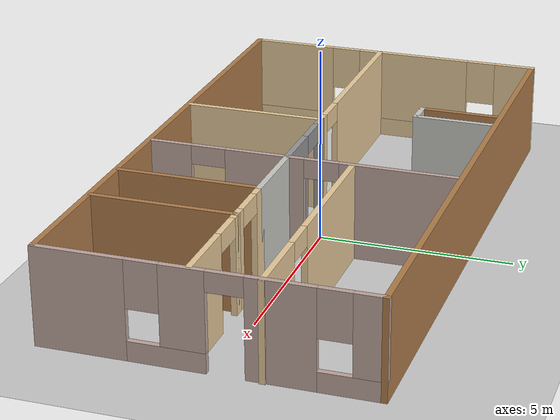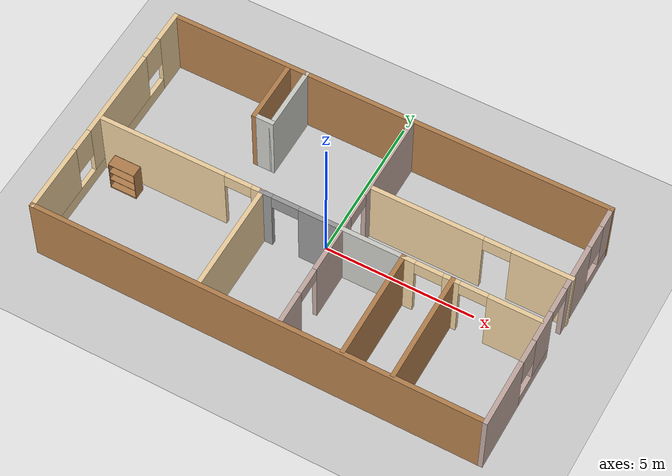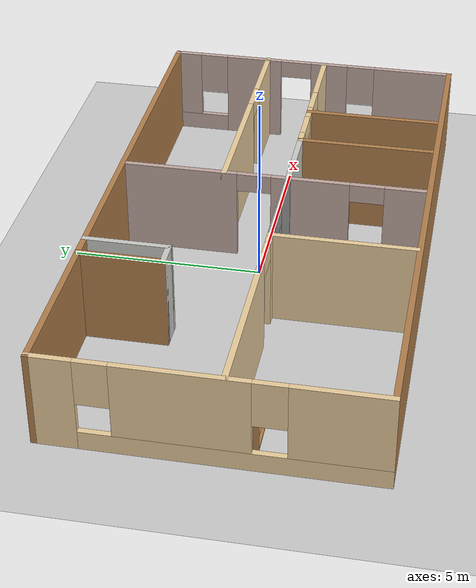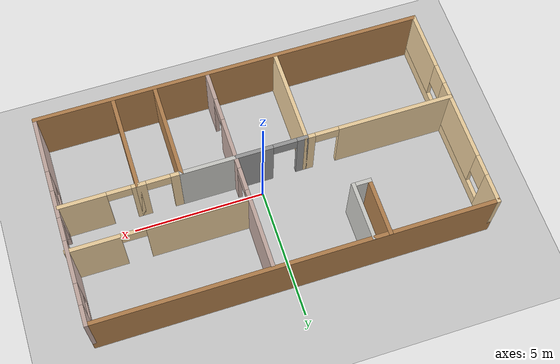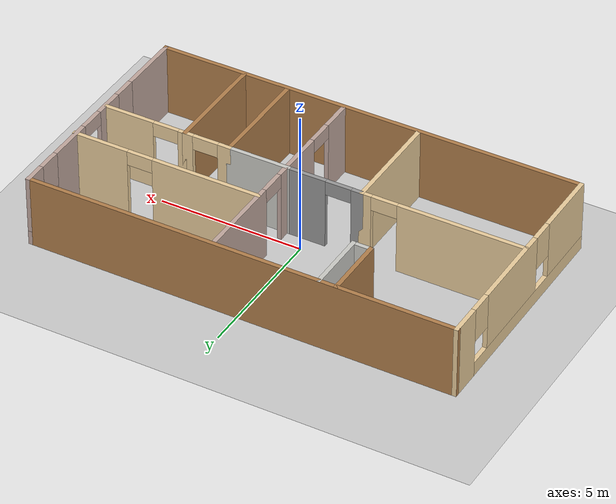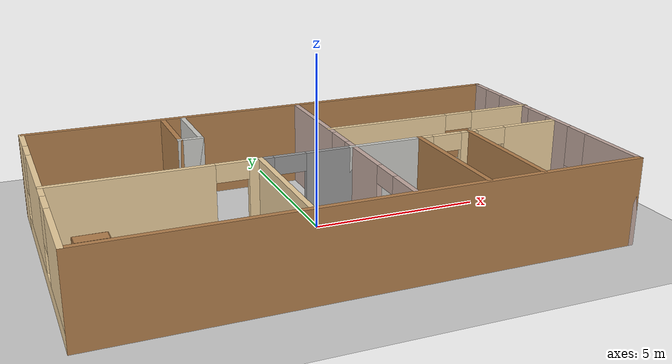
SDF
<sdf version="1.6">
 <world name="default">
  <light name="sun" type="directional">
   <pose>0 0 10 0 -0 0</pose>
   <diffuse>0.8 0.8 0.8 1</diffuse>
   <specular>0.2 0.2 0.2 1</specular>
   <attenuation>
    <range>1000</range>
    <constant>0.9</constant>
    <linear>0.01</linear>
    <quadratic>0.001</quadratic>
   </attenuation>
   <direction>-0.5 0.1 -0.9</direction>
  </light>
  <model name="ground_plane">
   <static>1</static>
   <link name="link">
    <collision name="collision">
     <geometry><plane><normal>0 0 1</normal><size>100 100</size></plane></geometry>
     <surface>
      <contact><collide_bitmask>65535</collide_bitmask></contact>
      <friction><ode><mu>100</mu><mu2>50</mu2></ode></friction>
     </surface>
    </collision>
    <visual name="visual">
     <cast_shadows>0</cast_shadows>
     <geometry><plane><normal>0 0 1</normal><size>100 100</size></plane></geometry>
     <material>
      <script><uri>file://media/materials/scripts/gazebo.material</uri><name>Gazebo/Grey</name></script>
     </material>
    </visual>
   </link>
  </model>
  <gravity>0 0 -9.8</gravity>
  <magnetic_field>6e-06 2.3e-05 -4.2e-05</magnetic_field>
  <atmosphere type="adiabatic"/>
  <physics name="default_physics" default="0" type="ode">
   <max_step_size>0.001</max_step_size>
   <real_time_factor>1</real_time_factor>
   <real_time_update_rate>1000</real_time_update_rate>
  </physics>
  <scene><ambient>0.4 0.4 0.4 1</ambient><background>0.7 0.7 0.7 1</background><shadows>1</shadows></scene>
  <spherical_coordinates>
   <surface_model>EARTH_WGS84</surface_model>
   <latitude_deg>0</latitude_deg>
   <longitude_deg>0</longitude_deg>
   <elevation>0</elevation>
   <heading_deg>0</heading_deg>
  </spherical_coordinates>
  <model name="Building">
   <pose>0 -0.223279 0 0 -0 0</pose>
   <link name="Wall_10">
    <pose>-4.62797 -0.372796 0 0 -0 0</pose>
    <visual name="Wall_10_Visual_0">
     <pose>-0.658179 0 1.25 0 -0 0</pose>
     <geometry><box><size>4.43364 0.15 2.5</size></box></geometry>
     <material>
      <script><uri>file://media/materials/scripts/gazebo.material</uri><name>Gazebo/Grey</name></script>
      <ambient>0.921569 0.807843 0.615686 1</ambient>
     </material>
     <meta><layer>0</layer></meta>
    </visual>
    <collision name="Wall_10_Collision_0">
     <geometry><box><size>4.43364 0.15 2.5</size></box></geometry>
     <pose>-0.658179 0 1.25 0 -0 0</pose>
    </collision>
    <visual name="Wall_10_Visual_1">
     <pose>2.66682 0 1.25 0 -0 0</pose>
     <geometry><box><size>0.416358 0.15 2.5</size></box></geometry>
     <material>
      <script><uri>file://media/materials/scripts/gazebo.material</uri><name>Gazebo/Grey</name></script>
      <ambient>0.921569 0.807843 0.615686 1</ambient>
     </material>
     <meta><layer>0</layer></meta>
    </visual>
    <collision name="Wall_10_Collision_1">
     <geometry><box><size>0.416358 0.15 2.5</size></box></geometry>
     <pose>2.66682 0 1.25 0 -0 0</pose>
    </collision>
    <visual name="Wall_10_Visual_2">
     <pose>2.00864 0 2.25 0 -0 0</pose>
     <geometry><box><size>0.9 0.15 0.5</size></box></geometry>
     <material>
      <script><uri>file://media/materials/scripts/gazebo.material</uri><name>Gazebo/Grey</name></script>
      <ambient>0.921569 0.807843 0.615686 1</ambient>
     </material>
     <meta><layer>0</layer></meta>
    </visual>
    <collision name="Wall_10_Collision_2">
     <geometry><box><size>0.9 0.15 0.5</size></box></geometry>
     <pose>2.00864 0 2.25 0 -0 0</pose>
    </collision>
   </link>
   <link name="Wall_11">
    <collision name="Wall_11_Collision">
     <geometry><box><size>3.75 0.15 2.5</size></box></geometry>
     <pose>0 0 1.25 0 -0 0</pose>
    </collision>
    <visual name="Wall_11_Visual">
     <pose>0 0 1.25 0 -0 0</pose>
     <geometry><box><size>3.75 0.15 2.5</size></box></geometry>
     <material>
      <script><uri>file://media/materials/scripts/gazebo.material</uri><name>Gazebo/Grey</name></script>
      <ambient>0.921569 0.807843 0.615686 1</ambient>
     </material>
     <meta><layer>0</layer></meta>
    </visual>
    <pose>-1.82797 -2.1728 0 0 0 -1.5708</pose>
   </link>
   <link name="Wall_13">
    <collision name="Wall_13_Collision">
     <geometry><box><size>15 0.15 2.5</size></box></geometry>
     <pose>0 0 1.25 0 -0 0</pose>
    </collision>
    <visual name="Wall_13_Visual">
     <pose>0 0 1.25 0 -0 0</pose>
     <geometry><box><size>15 0.15 2.5</size></box></geometry>
     <material>
      <script><uri>file://media/materials/scripts/gazebo.material</uri><name>Gazebo/Wood</name></script>
      <ambient>1 1 1 1</ambient>
     </material>
     <meta><layer>0</layer></meta>
    </visual>
    <pose>-0.019546 4.05 0 0 -0 0</pose>
   </link>
   <link name="Wall_17">
    <pose>0.844548 -0.003816 0 0 0 -1.5708</pose>
    <visual name="Wall_17_Visual_0">
     <pose>-2.48974 0 1.25 0 -0 0</pose>
     <geometry><box><size>3.02052 0.15 2.5</size></box></geometry>
     <material>
      <script><uri>file://media/materials/scripts/gazebo.material</uri><name>Gazebo/Grey</name></script>
      <ambient>0.760784 0.662745 0.627451 1</ambient>
     </material>
     <meta><layer>0</layer></meta>
    </visual>
    <collision name="Wall_17_Collision_0">
     <geometry><box><size>3.02052 0.15 2.5</size></box></geometry>
     <pose>-2.48974 0 1.25 0 -0 0</pose>
    </collision>
    <visual name="Wall_17_Visual_1">
     <pose>0.954141 0 1.25 0 -0 0</pose>
     <geometry><box><size>2.06725 0.15 2.5</size></box></geometry>
     <material>
      <script><uri>file://media/materials/scripts/gazebo.material</uri><name>Gazebo/Grey</name></script>
      <ambient>0.760784 0.662745 0.627451 1</ambient>
     </material>
     <meta><layer>0</layer></meta>
    </visual>
    <collision name="Wall_17_Collision_1">
     <geometry><box><size>2.06725 0.15 2.5</size></box></geometry>
     <pose>0.954141 0 1.25 0 -0 0</pose>
    </collision>
    <visual name="Wall_17_Visual_2">
     <pose>3.44388 0 1.25 0 -0 0</pose>
     <geometry><box><size>1.11223 0.15 2.5</size></box></geometry>
     <material>
      <script><uri>file://media/materials/scripts/gazebo.material</uri><name>Gazebo/Grey</name></script>
      <ambient>0.760784 0.662745 0.627451 1</ambient>
     </material>
     <meta><layer>0</layer></meta>
    </visual>
    <collision name="Wall_17_Collision_2">
     <geometry><box><size>1.11223 0.15 2.5</size></box></geometry>
     <pose>3.44388 0 1.25 0 -0 0</pose>
    </collision>
    <visual name="Wall_17_Visual_3">
     <pose>-0.529485 0 2.25 0 -0 0</pose>
     <geometry><box><size>0.9 0.15 0.5</size></box></geometry>
     <material>
      <script><uri>file://media/materials/scripts/gazebo.material</uri><name>Gazebo/Grey</name></script>
      <ambient>0.760784 0.662745 0.627451 1</ambient>
     </material>
     <meta><layer>0</layer></meta>
    </visual>
    <collision name="Wall_17_Collision_3">
     <geometry><box><size>0.9 0.15 0.5</size></box></geometry>
     <pose>-0.529485 0 2.25 0 -0 0</pose>
    </collision>
    <visual name="Wall_17_Visual_4">
     <pose>2.43777 0 2.25 0 -0 0</pose>
     <geometry><box><size>0.9 0.15 0.5</size></box></geometry>
     <material>
      <script><uri>file://media/materials/scripts/gazebo.material</uri><name>Gazebo/Grey</name></script>
      <ambient>0.760784 0.662745 0.627451 1</ambient>
     </material>
     <meta><layer>0</layer></meta>
    </visual>
    <collision name="Wall_17_Collision_4">
     <geometry><box><size>0.9 0.15 0.5</size></box></geometry>
     <pose>2.43777 0 2.25 0 -0 0</pose>
    </collision>
   </link>
   <link name="Wall_19">
    <pose>-0.52797 -0.372796 0 0 -0 0</pose>
    <visual name="Wall_19_Visual_0">
     <pose>-1.15924 0 1.25 0 -0 0</pose>
     <geometry><box><size>0.431514 0.15 2.5</size></box></geometry>
     <material>
      <script><uri>file://media/materials/scripts/gazebo.material</uri><name>Gazebo/Grey</name></script>
      <ambient>1 1 1 1</ambient>
     </material>
     <meta><layer>0</layer></meta>
    </visual>
    <collision name="Wall_19_Collision_0">
     <geometry><box><size>0.431514 0.15 2.5</size></box></geometry>
     <pose>-1.15924 0 1.25 0 -0 0</pose>
    </collision>
    <visual name="Wall_19_Visual_1">
     <pose>0.665757 0 1.25 0 -0 0</pose>
     <geometry><box><size>1.41849 0.15 2.5</size></box></geometry>
     <material>
      <script><uri>file://media/materials/scripts/gazebo.material</uri><name>Gazebo/Grey</name></script>
      <ambient>1 1 1 1</ambient>
     </material>
     <meta><layer>0</layer></meta>
    </visual>
    <collision name="Wall_19_Collision_1">
     <geometry><box><size>1.41849 0.15 2.5</size></box></geometry>
     <pose>0.665757 0 1.25 0 -0 0</pose>
    </collision>
    <visual name="Wall_19_Visual_2">
     <pose>-0.493486 0 2.25 0 -0 0</pose>
     <geometry><box><size>0.9 0.15 0.5</size></box></geometry>
     <material>
      <script><uri>file://media/materials/scripts/gazebo.material</uri><name>Gazebo/Grey</name></script>
      <ambient>1 1 1 1</ambient>
     </material>
     <meta><layer>0</layer></meta>
    </visual>
    <collision name="Wall_19_Collision_2">
     <geometry><box><size>0.9 0.15 0.5</size></box></geometry>
     <pose>-0.493486 0 2.25 0 -0 0</pose>
    </collision>
   </link>
   <link name="Wall_23">
    <collision name="Wall_23_Collision">
     <geometry><box><size>2.25 0.15 2.5</size></box></geometry>
     <pose>0 0 1.25 0 -0 0</pose>
    </collision>
    <visual name="Wall_23_Visual">
     <pose>0 0 1.25 0 -0 0</pose>
     <geometry><box><size>2.25 0.15 2.5</size></box></geometry>
     <material>
      <script><uri>file://media/materials/scripts/gazebo.material</uri><name>Gazebo/Wood</name></script>
      <ambient>1 1 1 1</ambient>
     </material>
     <meta><layer>0</layer></meta>
    </visual>
    <pose>-3.40749 2.99355 0 0 0 -1.5708</pose>
   </link>
   <link name="Wall_24">
    <collision name="Wall_24_Collision">
     <geometry><box><size>0.75 0.15 2.5</size></box></geometry>
     <pose>0 0 1.25 0 -0 0</pose>
    </collision>
    <visual name="Wall_24_Visual">
     <pose>0 0 1.25 0 -0 0</pose>
     <geometry><box><size>0.75 0.15 2.5</size></box></geometry>
     <material>
      <script><uri>file://media/materials/scripts/gazebo.material</uri><name>Gazebo/CeilingTiled</name></script>
      <ambient>1 1 1 1</ambient>
     </material>
     <meta><layer>0</layer></meta>
    </visual>
    <pose>-3.10749 1.94355 0 0 -0 0</pose>
   </link>
   <link name="Wall_27">
    <collision name="Wall_27_Collision">
     <geometry><box><size>2.25 0.15 2.5</size></box></geometry>
     <pose>0 0 1.25 0 -0 0</pose>
    </collision>
    <visual name="Wall_27_Visual">
     <pose>0 0 1.25 0 -0 0</pose>
     <geometry><box><size>2.25 0.15 2.5</size></box></geometry>
     <material>
      <script><uri>file://media/materials/scripts/gazebo.material</uri><name>Gazebo/CeilingTiled</name></script>
      <ambient>1 1 1 1</ambient>
     </material>
     <meta><layer>0</layer></meta>
    </visual>
    <pose>-2.80749 2.99355 0 0 -0 1.5708</pose>
   </link>
   <link name="Wall_3">
    <pose>-7.44455 0 0 0 0 -1.5708</pose>
    <visual name="Wall_3_Visual_0">
     <pose>-3.5654 0 1.25 0 -0 0</pose>
     <geometry><box><size>1.1192 0.15 2.5</size></box></geometry>
     <material>
      <script><uri>file://media/materials/scripts/gazebo.material</uri><name>Gazebo/Grey</name></script>
      <ambient>0.921569 0.807843 0.615686 1</ambient>
     </material>
     <meta><layer>0</layer></meta>
    </visual>
    <collision name="Wall_3_Collision_0">
     <geometry><box><size>1.1192 0.15 2.5</size></box></geometry>
     <pose>-3.5654 0 1.25 0 -0 0</pose>
    </collision>
    <visual name="Wall_3_Visual_1">
     <pose>0.559598 0 0.25 0 -0 0</pose>
     <geometry><box><size>7.1308 0.15 0.5</size></box></geometry>
     <material>
      <script><uri>file://media/materials/scripts/gazebo.material</uri><name>Gazebo/Grey</name></script>
      <ambient>0.921569 0.807843 0.615686 1</ambient>
     </material>
     <meta><layer>0</layer></meta>
    </visual>
    <collision name="Wall_3_Collision_1">
     <geometry><box><size>7.1308 0.15 0.5</size></box></geometry>
     <pose>0.559598 0 0.25 0 -0 0</pose>
    </collision>
    <visual name="Wall_3_Visual_2">
     <pose>-0.61744 0 1.5 0 -0 0</pose>
     <geometry><box><size>3.17673 0.15 2</size></box></geometry>
     <material>
      <script><uri>file://media/materials/scripts/gazebo.material</uri><name>Gazebo/Grey</name></script>
      <ambient>0.921569 0.807843 0.615686 1</ambient>
     </material>
     <meta><layer>0</layer></meta>
    </visual>
    <collision name="Wall_3_Collision_2">
     <geometry><box><size>3.17673 0.15 2</size></box></geometry>
     <pose>-0.61744 0 1.5 0 -0 0</pose>
    </collision>
    <visual name="Wall_3_Visual_3">
     <pose>2.94796 0 1.5 0 -0 0</pose>
     <geometry><box><size>2.35407 0.15 2</size></box></geometry>
     <material>
      <script><uri>file://media/materials/scripts/gazebo.material</uri><name>Gazebo/Grey</name></script>
      <ambient>0.921569 0.807843 0.615686 1</ambient>
     </material>
     <meta><layer>0</layer></meta>
    </visual>
    <collision name="Wall_3_Collision_3">
     <geometry><box><size>2.35407 0.15 2</size></box></geometry>
     <pose>2.94796 0 1.5 0 -0 0</pose>
    </collision>
    <visual name="Wall_3_Visual_4">
     <pose>-2.6058 0 1.9 0 -0 0</pose>
     <geometry><box><size>0.8 0.15 1.2</size></box></geometry>
     <material>
      <script><uri>file://media/materials/scripts/gazebo.material</uri><name>Gazebo/Grey</name></script>
      <ambient>0.921569 0.807843 0.615686 1</ambient>
     </material>
     <meta><layer>0</layer></meta>
    </visual>
    <collision name="Wall_3_Collision_4">
     <geometry><box><size>0.8 0.15 1.2</size></box></geometry>
     <pose>-2.6058 0 1.9 0 -0 0</pose>
    </collision>
    <visual name="Wall_3_Visual_5">
     <pose>1.37092 0 1.9 0 -0 0</pose>
     <geometry><box><size>0.8 0.15 1.2</size></box></geometry>
     <material>
      <script><uri>file://media/materials/scripts/gazebo.material</uri><name>Gazebo/Grey</name></script>
      <ambient>0.921569 0.807843 0.615686 1</ambient>
     </material>
     <meta><layer>0</layer></meta>
    </visual>
    <collision name="Wall_3_Collision_5">
     <geometry><box><size>0.8 0.15 1.2</size></box></geometry>
     <pose>1.37092 0 1.9 0 -0 0</pose>
    </collision>
   </link>
   <link name="Wall_31">
    <pose>4.14455 1.32102 0 0 -0 0</pose>
    <visual name="Wall_31_Visual_0">
     <pose>-1.45177 0 1.25 0 -0 0</pose>
     <geometry><box><size>3.84645 0.15 2.5</size></box></geometry>
     <material>
      <script><uri>file://media/materials/scripts/gazebo.material</uri><name>Gazebo/Grey</name></script>
      <ambient>0.921569 0.807843 0.615686 1</ambient>
     </material>
     <meta><layer>0</layer></meta>
    </visual>
    <collision name="Wall_31_Collision_0">
     <geometry><box><size>3.84645 0.15 2.5</size></box></geometry>
     <pose>-1.45177 0 1.25 0 -0 0</pose>
    </collision>
    <visual name="Wall_31_Visual_1">
     <pose>2.37323 0 1.25 0 -0 0</pose>
     <geometry><box><size>2.00355 0.15 2.5</size></box></geometry>
     <material>
      <script><uri>file://media/materials/scripts/gazebo.material</uri><name>Gazebo/Grey</name></script>
      <ambient>0.921569 0.807843 0.615686 1</ambient>
     </material>
     <meta><layer>0</layer></meta>
    </visual>
    <collision name="Wall_31_Collision_1">
     <geometry><box><size>2.00355 0.15 2.5</size></box></geometry>
     <pose>2.37323 0 1.25 0 -0 0</pose>
    </collision>
    <visual name="Wall_31_Visual_2">
     <pose>0.921452 0 2.25 0 -0 0</pose>
     <geometry><box><size>0.9 0.15 0.5</size></box></geometry>
     <material>
      <script><uri>file://media/materials/scripts/gazebo.material</uri><name>Gazebo/Grey</name></script>
      <ambient>0.921569 0.807843 0.615686 1</ambient>
     </material>
     <meta><layer>0</layer></meta>
    </visual>
    <collision name="Wall_31_Collision_2">
     <geometry><box><size>0.9 0.15 0.5</size></box></geometry>
     <pose>0.921452 0 2.25 0 -0 0</pose>
    </collision>
   </link>
   <link name="Wall_33">
    <collision name="Wall_33_Collision">
     <geometry><box><size>2.25 0.15 2.5</size></box></geometry>
     <pose>0 0 1.25 0 -0 0</pose>
    </collision>
    <visual name="Wall_33_Visual">
     <pose>0 0 1.25 0 -0 0</pose>
     <geometry><box><size>2.25 0.15 2.5</size></box></geometry>
     <material>
      <script><uri>file://media/materials/scripts/gazebo.material</uri><name>Gazebo/CeilingTiled</name></script>
      <ambient>1 1 1 1</ambient>
     </material>
     <meta><layer>0</layer></meta>
    </visual>
    <pose>1.82203 -0.372796 0 0 -0 0</pose>
   </link>
   <link name="Wall_34">
    <collision name="Wall_34_Collision">
     <geometry><box><size>3.75 0.15 2.5</size></box></geometry>
     <pose>0 0 1.25 0 -0 0</pose>
    </collision>
    <visual name="Wall_34_Visual">
     <pose>0 0 1.25 0 -0 0</pose>
     <geometry><box><size>3.75 0.15 2.5</size></box></geometry>
     <material>
      <script><uri>file://media/materials/scripts/gazebo.material</uri><name>Gazebo/Wood</name></script>
      <ambient>1 1 1 1</ambient>
     </material>
     <meta><layer>0</layer></meta>
    </visual>
    <pose>2.87203 -2.1728 0 0 0 -1.5708</pose>
   </link>
   <link name="Wall_36">
    <pose>3.67203 -0.372796 0 0 -0 0</pose>
    <visual name="Wall_36_Visual_0">
     <pose>-0.6385 0 1.25 0 -0 0</pose>
     <geometry><box><size>0.472999 0.15 2.5</size></box></geometry>
     <material>
      <script><uri>file://media/materials/scripts/gazebo.material</uri><name>Gazebo/Grey</name></script>
      <ambient>0.921569 0.807843 0.615686 1</ambient>
     </material>
     <meta><layer>0</layer></meta>
    </visual>
    <collision name="Wall_36_Collision_0">
     <geometry><box><size>0.472999 0.15 2.5</size></box></geometry>
     <pose>-0.6385 0 1.25 0 -0 0</pose>
    </collision>
    <visual name="Wall_36_Visual_1">
     <pose>0.6865 0 1.25 0 -0 0</pose>
     <geometry><box><size>0.377001 0.15 2.5</size></box></geometry>
     <material>
      <script><uri>file://media/materials/scripts/gazebo.material</uri><name>Gazebo/Grey</name></script>
      <ambient>0.921569 0.807843 0.615686 1</ambient>
     </material>
     <meta><layer>0</layer></meta>
    </visual>
    <collision name="Wall_36_Collision_1">
     <geometry><box><size>0.377001 0.15 2.5</size></box></geometry>
     <pose>0.6865 0 1.25 0 -0 0</pose>
    </collision>
    <visual name="Wall_36_Visual_2">
     <pose>0.047999 0 2.25 0 -0 0</pose>
     <geometry><box><size>0.9 0.15 0.5</size></box></geometry>
     <material>
      <script><uri>file://media/materials/scripts/gazebo.material</uri><name>Gazebo/Grey</name></script>
      <ambient>0.921569 0.807843 0.615686 1</ambient>
     </material>
     <meta><layer>0</layer></meta>
    </visual>
    <collision name="Wall_36_Collision_2">
     <geometry><box><size>0.9 0.15 0.5</size></box></geometry>
     <pose>0.047999 0 2.25 0 -0 0</pose>
    </collision>
   </link>
   <link name="Wall_37">
    <collision name="Wall_37_Collision">
     <geometry><box><size>3.75 0.15 2.5</size></box></geometry>
     <pose>0 0 1.25 0 -0 0</pose>
    </collision>
    <visual name="Wall_37_Visual">
     <pose>0 0 1.25 0 -0 0</pose>
     <geometry><box><size>3.75 0.15 2.5</size></box></geometry>
     <material>
      <script><uri>file://media/materials/scripts/gazebo.material</uri><name>Gazebo/Wood</name></script>
      <ambient>1 1 1 1</ambient>
     </material>
     <meta><layer>0</layer></meta>
    </visual>
    <pose>4.47203 -2.1728 0 0 0 -1.5708</pose>
   </link>
   <link name="Wall_39">
    <pose>5.89703 -0.372796 0 0 -0 0</pose>
    <visual name="Wall_39_Visual_0">
     <pose>-1.34463 0 1.25 0 -0 0</pose>
     <geometry><box><size>0.31074 0.15 2.5</size></box></geometry>
     <material>
      <script><uri>file://media/materials/scripts/gazebo.material</uri><name>Gazebo/Grey</name></script>
      <ambient>0.921569 0.807843 0.615686 1</ambient>
     </material>
     <meta><layer>0</layer></meta>
    </visual>
    <collision name="Wall_39_Collision_0">
     <geometry><box><size>0.31074 0.15 2.5</size></box></geometry>
     <pose>-1.34463 0 1.25 0 -0 0</pose>
    </collision>
    <visual name="Wall_39_Visual_1">
     <pose>0.60537 0 1.25 0 -0 0</pose>
     <geometry><box><size>1.78926 0.15 2.5</size></box></geometry>
     <material>
      <script><uri>file://media/materials/scripts/gazebo.material</uri><name>Gazebo/Grey</name></script>
      <ambient>0.921569 0.807843 0.615686 1</ambient>
     </material>
     <meta><layer>0</layer></meta>
    </visual>
    <collision name="Wall_39_Collision_1">
     <geometry><box><size>1.78926 0.15 2.5</size></box></geometry>
     <pose>0.60537 0 1.25 0 -0 0</pose>
    </collision>
    <visual name="Wall_39_Visual_2">
     <pose>-0.73926 0 2.25 0 -0 0</pose>
     <geometry><box><size>0.9 0.15 0.5</size></box></geometry>
     <material>
      <script><uri>file://media/materials/scripts/gazebo.material</uri><name>Gazebo/Grey</name></script>
      <ambient>0.921569 0.807843 0.615686 1</ambient>
     </material>
     <meta><layer>0</layer></meta>
    </visual>
    <collision name="Wall_39_Collision_2">
     <geometry><box><size>0.9 0.15 0.5</size></box></geometry>
     <pose>-0.73926 0 2.25 0 -0 0</pose>
    </collision>
   </link>
   <link name="Wall_4">
    <collision name="Wall_4_Collision">
     <geometry><box><size>15 0.15 2.5</size></box></geometry>
     <pose>0 0 1.25 0 -0 0</pose>
    </collision>
    <visual name="Wall_4_Visual">
     <pose>0 0 1.25 0 -0 0</pose>
     <geometry><box><size>15 0.15 2.5</size></box></geometry>
     <material>
      <script><uri>file://media/materials/scripts/gazebo.material</uri><name>Gazebo/Wood</name></script>
      <ambient>1 1 1 1</ambient>
     </material>
     <meta><layer>0</layer></meta>
    </visual>
    <pose>-0.019546 -4.05 0 0 -0 0</pose>
   </link>
   <link name="Wall_5">
    <pose>7.40545 0 0 0 -0 1.5708</pose>
    <visual name="Wall_5_Visual_0">
     <pose>-2.99385 0 1.25 0 -0 0</pose>
     <geometry><box><size>2.2623 0.15 2.5</size></box></geometry>
     <material>
      <script><uri>file://media/materials/scripts/gazebo.material</uri><name>Gazebo/Grey</name></script>
      <ambient>0.760784 0.662745 0.627451 1</ambient>
     </material>
     <meta><layer>0</layer></meta>
    </visual>
    <collision name="Wall_5_Collision_0">
     <geometry><box><size>2.2623 0.15 2.5</size></box></geometry>
     <pose>-2.99385 0 1.25 0 -0 0</pose>
    </collision>
    <visual name="Wall_5_Visual_1">
     <pose>1.72839 0 1.25 0 -0 0</pose>
     <geometry><box><size>1.62781 0.15 2.5</size></box></geometry>
     <material>
      <script><uri>file://media/materials/scripts/gazebo.material</uri><name>Gazebo/Grey</name></script>
      <ambient>0.760784 0.662745 0.627451 1</ambient>
     </material>
     <meta><layer>0</layer></meta>
    </visual>
    <collision name="Wall_5_Collision_1">
     <geometry><box><size>1.62781 0.15 2.5</size></box></geometry>
     <pose>1.72839 0 1.25 0 -0 0</pose>
    </collision>
    <visual name="Wall_5_Visual_2">
     <pose>-0.924104 0 0.25 0 -0 0</pose>
     <geometry><box><size>1.87718 0.15 0.5</size></box></geometry>
     <material>
      <script><uri>file://media/materials/scripts/gazebo.material</uri><name>Gazebo/Grey</name></script>
      <ambient>0.760784 0.662745 0.627451 1</ambient>
     </material>
     <meta><layer>0</layer></meta>
    </visual>
    <collision name="Wall_5_Collision_2">
     <geometry><box><size>1.87718 0.15 0.5</size></box></geometry>
     <pose>-0.924104 0 0.25 0 -0 0</pose>
    </collision>
    <visual name="Wall_5_Visual_3">
     <pose>3.33365 0 0.25 0 -0 0</pose>
     <geometry><box><size>1.5827 0.15 0.5</size></box></geometry>
     <material>
      <script><uri>file://media/materials/scripts/gazebo.material</uri><name>Gazebo/Grey</name></script>
      <ambient>0.760784 0.662745 0.627451 1</ambient>
     </material>
     <meta><layer>0</layer></meta>
    </visual>
    <collision name="Wall_5_Collision_3">
     <geometry><box><size>1.5827 0.15 0.5</size></box></geometry>
     <pose>3.33365 0 0.25 0 -0 0</pose>
    </collision>
    <visual name="Wall_5_Visual_4">
     <pose>-0.524104 0 1.5 0 -0 0</pose>
     <geometry><box><size>1.07718 0.15 2</size></box></geometry>
     <material>
      <script><uri>file://media/materials/scripts/gazebo.material</uri><name>Gazebo/Grey</name></script>
      <ambient>0.760784 0.662745 0.627451 1</ambient>
     </material>
     <meta><layer>0</layer></meta>
    </visual>
    <collision name="Wall_5_Collision_4">
     <geometry><box><size>1.07718 0.15 2</size></box></geometry>
     <pose>-0.524104 0 1.5 0 -0 0</pose>
    </collision>
    <visual name="Wall_5_Visual_5">
     <pose>-0.524104 0 1.5 0 -0 0</pose>
     <geometry><box><size>1.07718 0.15 2</size></box></geometry>
     <material>
      <script><uri>file://media/materials/scripts/gazebo.material</uri><name>Gazebo/Grey</name></script>
      <ambient>0.760784 0.662745 0.627451 1</ambient>
     </material>
     <meta><layer>0</layer></meta>
    </visual>
    <collision name="Wall_5_Collision_5">
     <geometry><box><size>1.07718 0.15 2</size></box></geometry>
     <pose>-0.524104 0 1.5 0 -0 0</pose>
    </collision>
    <visual name="Wall_5_Visual_6">
     <pose>3.73365 0 1.5 0 -0 0</pose>
     <geometry><box><size>0.782703 0.15 2</size></box></geometry>
     <material>
      <script><uri>file://media/materials/scripts/gazebo.material</uri><name>Gazebo/Grey</name></script>
      <ambient>0.760784 0.662745 0.627451 1</ambient>
     </material>
     <meta><layer>0</layer></meta>
    </visual>
    <collision name="Wall_5_Collision_6">
     <geometry><box><size>0.782703 0.15 2</size></box></geometry>
     <pose>3.73365 0 1.5 0 -0 0</pose>
    </collision>
    <visual name="Wall_5_Visual_7">
     <pose>-1.4627 0 1.9 0 -0 0</pose>
     <geometry><box><size>0.8 0.15 1.2</size></box></geometry>
     <material>
      <script><uri>file://media/materials/scripts/gazebo.material</uri><name>Gazebo/Grey</name></script>
      <ambient>0.760784 0.662745 0.627451 1</ambient>
     </material>
     <meta><layer>0</layer></meta>
    </visual>
    <collision name="Wall_5_Collision_7">
     <geometry><box><size>0.8 0.15 1.2</size></box></geometry>
     <pose>-1.4627 0 1.9 0 -0 0</pose>
    </collision>
    <visual name="Wall_5_Visual_8">
     <pose>2.9423 0 1.9 0 -0 0</pose>
     <geometry><box><size>0.8 0.15 1.2</size></box></geometry>
     <material>
      <script><uri>file://media/materials/scripts/gazebo.material</uri><name>Gazebo/Grey</name></script>
      <ambient>0.760784 0.662745 0.627451 1</ambient>
     </material>
     <meta><layer>0</layer></meta>
    </visual>
    <collision name="Wall_5_Collision_8">
     <geometry><box><size>0.8 0.15 1.2</size></box></geometry>
     <pose>2.9423 0 1.9 0 -0 0</pose>
    </collision>
    <visual name="Wall_5_Visual_9">
     <pose>0.464488 0 2.25 0 -0 0</pose>
     <geometry><box><size>0.9 0.15 0.5</size></box></geometry>
     <material>
      <script><uri>file://media/materials/scripts/gazebo.material</uri><name>Gazebo/Grey</name></script>
      <ambient>0.760784 0.662745 0.627451 1</ambient>
     </material>
     <meta><layer>0</layer></meta>
    </visual>
    <collision name="Wall_5_Collision_9">
     <geometry><box><size>0.9 0.15 0.5</size></box></geometry>
     <pose>0.464488 0 2.25 0 -0 0</pose>
    </collision>
    <visual name="Wall_5_Visual_10">
     <pose>0.464488 0 2.25 0 -0 0</pose>
     <geometry><box><size>0.9 0.15 0.5</size></box></geometry>
     <material>
      <script><uri>file://media/materials/scripts/gazebo.material</uri><name>Gazebo/Grey</name></script>
      <ambient>0.760784 0.662745 0.627451 1</ambient>
     </material>
     <meta><layer>0</layer></meta>
    </visual>
    <collision name="Wall_5_Collision_10">
     <geometry><box><size>0.9 0.15 0.5</size></box></geometry>
     <pose>0.464488 0 2.25 0 -0 0</pose>
    </collision>
   </link>
   <static>1</static>
  </model>
  <model name="bookshelf_0">
   <static>1</static>
   <link name="link">
    <inertial><mass>1</mass></inertial>
    <collision name="back">
     <pose>0 0.005 0.6 0 -0 0</pose>
     <geometry><box><size>0.9 0.01 1.2</size></box></geometry>
    </collision>
    <visual name="visual1">
     <pose>0 0.005 0.6 0 -0 0</pose>
     <geometry><box><size>0.9 0.01 1.2</size></box></geometry>
     <material>
      <script><uri>file://media/materials/scripts/gazebo.material</uri><name>Gazebo/Wood</name></script>
     </material>
    </visual>
    <collision name="left_side">
     <pose>0.45 -0.195 0.6 0 -0 0</pose>
     <geometry><box><size>0.02 0.4 1.2</size></box></geometry>
    </collision>
    <visual name="visual2">
     <pose>0.45 -0.195 0.6 0 -0 0</pose>
     <geometry><box><size>0.02 0.4 1.2</size></box></geometry>
     <material>
      <script><uri>file://media/materials/scripts/gazebo.material</uri><name>Gazebo/Wood</name></script>
     </material>
    </visual>
    <collision name="right_side">
     <pose>-0.45 -0.195 0.6 0 -0 0</pose>
     <geometry><box><size>0.02 0.4 1.2</size></box></geometry>
    </collision>
    <visual name="visual3">
     <pose>-0.45 -0.195 0.6 0 -0 0</pose>
     <geometry><box><size>0.02 0.4 1.2</size></box></geometry>
     <material>
      <script><uri>file://media/materials/scripts/gazebo.material</uri><name>Gazebo/Wood</name></script>
     </material>
    </visual>
    <collision name="bottom">
     <pose>0 -0.195 0.03 0 -0 0</pose>
     <geometry><box><size>0.88 0.4 0.06</size></box></geometry>
    </collision>
    <visual name="visual4">
     <pose>0 -0.195 0.03 0 -0 0</pose>
     <geometry><box><size>0.88 0.4 0.06</size></box></geometry>
     <material>
      <script><uri>file://media/materials/scripts/gazebo.material</uri><name>Gazebo/Wood</name></script>
     </material>
    </visual>
    <collision name="top">
     <pose>0 -0.195 1.19 0 -0 0</pose>
     <geometry><box><size>0.88 0.4 0.02</size></box></geometry>
    </collision>
    <visual name="visual5">
     <pose>0 -0.195 1.19 0 -0 0</pose>
     <geometry><box><size>0.88 0.4 0.02</size></box></geometry>
     <material>
      <script><uri>file://media/materials/scripts/gazebo.material</uri><name>Gazebo/Wood</name></script>
     </material>
    </visual>
    <collision name="low_shelf">
     <pose>0 -0.195 0.43 0 -0 0</pose>
     <geometry><box><size>0.88 0.4 0.02</size></box></geometry>
    </collision>
    <visual name="visual6">
     <pose>0 -0.195 0.43 0 -0 0</pose>
     <geometry><box><size>0.88 0.4 0.02</size></box></geometry>
     <material>
      <script><uri>file://media/materials/scripts/gazebo.material</uri><name>Gazebo/Wood</name></script>
     </material>
    </visual>
    <collision name="high_shelf">
     <pose>0 -0.195 0.8 0 -0 0</pose>
     <geometry><box><size>0.88 0.4 0.02</size></box></geometry>
    </collision>
    <visual name="visual7">
     <pose>0 -0.195 0.8 0 -0 0</pose>
     <geometry><box><size>0.88 0.4 0.02</size></box></geometry>
     <material>
      <script><uri>file://media/materials/scripts/gazebo.material</uri><name>Gazebo/Wood</name></script>
     </material>
    </visual>
   </link>
   <pose>-6.39531 -0.84922 0 0 -0 0</pose>
  </model>
 </world>
</sdf>
